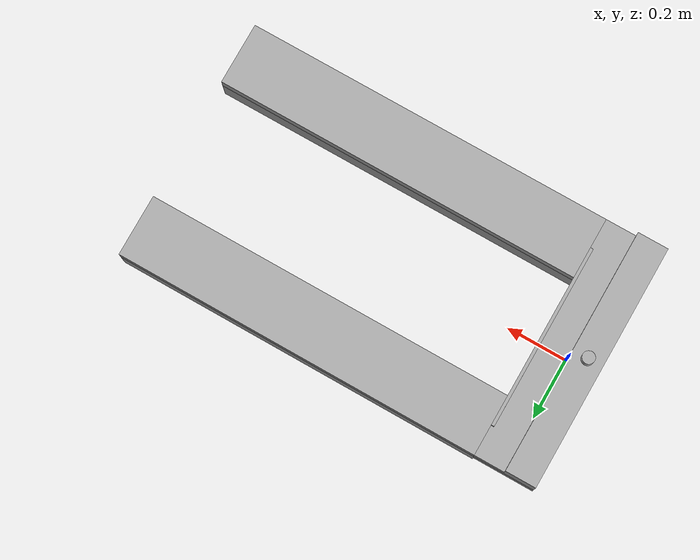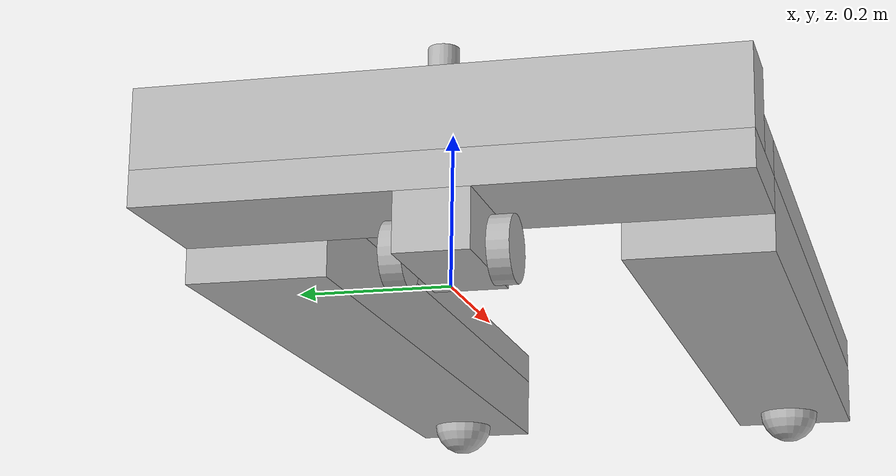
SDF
<?xml version='1.0'?>
<sdf version='1.4'>
	<model name="palletjack">
		<link name="chassis">
			<pose>0.6 0 0.11 0 0 0</pose>
			<inertial>
				<mass>100</mass>
			</inertial>
			<!--DIFFERENTIAL DRIVE CHASSIS-->
			<collision name="diffdrive_collision">
				<pose>-0.6 0 -0.05 0 0 0</pose>
				<geometry>
					<box>
						<size>0.2 0.1 0.08</size>
					</box>
				</geometry>
			</collision>
			<visual name="diffdrive_visual">
				<pose>-0.6 0 -0.05 0 0 0</pose>
				<geometry>
					<box>
						<size>0.2 0.1 0.08</size>
					</box>
				</geometry>
			</visual>

			<!--FRONT STRUCTURE-->
			<collision name="collision">
				<pose>-0.6 0 0.015 0 0 0</pose>
				<geometry>
					<box>
						<size>0.2 0.8 0.05</size>
					</box>
				</geometry>
			</collision>
			<visual name="visual">
				<pose>-0.6 0 0.015 0 0 0</pose>
				<geometry>
					<box>
						<size>0.2 0.8 0.05</size>
					</box>
				</geometry>
			</visual>

			<collision name="frontal_cover_collision">
				<pose>-0.65 0 0.095 0 0 0</pose>
				<geometry>
					<box>
						<size>0.1 0.8 0.11</size>
					</box>
				</geometry>
			</collision>
			<visual name="frontal_cover_visual">
				<pose>-0.65 0 0.095 0 0 0</pose>
				<geometry>
					<box>
						<size>0.1 0.8 0.11</size>
					</box>
				</geometry>
			</visual>

			<!--LASER STRUCTURE and SENSOR-->
			<collision name="laser_cylinder_collision">
				<pose>-0.65 0 0.17 0 0 0</pose>
				<geometry>
					<cylinder>
						<radius>0.02</radius>
						<length>0.04</length>
					</cylinder>
				</geometry>
			</collision>
			<visual name="laser_cylinder_visual">
				<pose>-0.65 0 0.17 0 0 0</pose>
				<geometry>
					<cylinder>
						<radius>0.02</radius>
						<length>0.04</length>
					</cylinder>
				</geometry>
			</visual>
			<sensor name="laser" type="ray">
				<pose>-0.63 0 0.17 0 -0 0</pose>
				<ray>
					<scan>
						<horizontal>
							<samples>120</samples>
							<resolution>1</resolution>
							<min_angle>-0.5</min_angle>
							<max_angle>0.5</max_angle>
						</horizontal>
					</scan>
					<range>
						<min>0.08</min>
						<max>1.1</max>
						<resolution>0.01</resolution>
					</range>
				</ray>
				<always_on>1</always_on>
				<update_rate>30</update_rate>
				<visualize>true</visualize>
			</sensor>

			<!--CAMERA-->
			<sensor type="camera" name="camera1">
				<pose>-0.6 0 0.04 0 0 3.14159</pose>
				<camera>
					<horizontal_fov>1.047</horizontal_fov>
					<image>
						<width>320</width>
						<height>240</height>
					</image>
					<clip>
						<near>0.1</near>
						<far>100</far>
					</clip>
				</camera>
				<always_on>1</always_on>
				<update_rate>30</update_rate>
				<visualize>true</visualize>
			</sensor>

			<!--FORKS-->
			<collision name="right_fork_collision">
				<pose>0.1 -0.3 -0.01 0 0 0</pose>
				<geometry>
					<box>
						<size>1.2 0.2 0.1</size>
					</box>
				</geometry>
			</collision>
			<visual name="right_fork_visual">
				<pose>0.1 -0.3 -0.01 0 0 0</pose>
				<geometry>
					<box>
						<size>1.2 0.2 0.1</size>
					</box>
				</geometry>
			</visual>

			<collision name="right_caster_collision">
				<pose>0.6 -0.3 -0.06 0 0 0</pose>
				<geometry>
					<sphere>
						<radius>.05</radius>
					</sphere>
				</geometry>
				<surface>
					<friction>
						<ode>
							<mu>1000</mu>
							<mu2>1000</mu2>
							<slip1>0</slip1>
							<slip2>0</slip2>
						</ode>
					</friction>
				</surface>
			</collision>
			<visual name="right_caster_visual">
				<pose>0.6 -0.3 -0.06 0 0 0</pose>
				<geometry>
					<sphere>
						<radius>.05</radius>
					</sphere>
				</geometry>
			</visual>

			<collision name="left_fork_collision">
				<pose>0.1 0.3 -0.01 0 0 0</pose>
				<geometry>
					<box>
						<size>1.2 0.2 0.1</size>
					</box>
				</geometry>
			</collision>
			<visual name="left_fork_visual">
				<pose>0.1 0.3 -0.01 0 0 0</pose>
				<geometry>
					<box>
						<size>1.2 0.2 0.1</size>
					</box>
				</geometry>
			</visual>

			<collision name="left_caster_collision">
				<pose>0.6 0.3 -0.06 0 0 0</pose>
				<geometry>
					<sphere>
						<radius>.05</radius>
					</sphere>
				</geometry>
				<surface>
					<friction>
						<ode>
							<mu>1000</mu>
							<mu2>1000</mu2>
							<slip1>0</slip1>
							<slip2>0</slip2>
						</ode>
					</friction>
				</surface>
			</collision>
			<visual name="left_caster_visual">
				<pose>0.6 0.3 -0.06 0 0 0</pose>
				<geometry>
					<sphere>
						<radius>.05</radius>
					</sphere>
				</geometry>
			</visual>
		</link>

		<!--DIFFERENTIAL DRIVE WHEELS-->
		<link name="diffdrive_right_wheel">
			<pose>0 -0.07 0.045 0 1.5707 1.5707</pose>
			<inertial>
				<mass>5</mass>
			</inertial>
			<collision name="collision">
				<geometry>
					<cylinder>
						<radius>.045</radius>
						<length>.03</length>
					</cylinder>
				</geometry>
			</collision>
			<visual name="visual">
				<geometry>
					<cylinder>
						<radius>.045</radius>
						<length>.03</length>
					</cylinder>
				</geometry>
			</visual>
		</link>

		<link name="diffdrive_left_wheel">
			<pose>0 0.07 0.045 0 1.5707 1.5707</pose>
			<inertial>
				<mass>5</mass>
			</inertial>
			<collision name="collision">
				<geometry>
					<cylinder>
						<radius>.045</radius>
						<length>.03</length>
					</cylinder>
				</geometry>
			</collision>
			<visual name="visual">
				<geometry>
					<cylinder>
						<radius>.045</radius>
						<length>.03</length>
					</cylinder>
				</geometry>
			</visual>
		</link>

		<joint type="revolute" name="left_wheel_hinge">
			<pose>0 0 -0.02 0 0 0</pose>
			<child>diffdrive_left_wheel</child>
			<parent>chassis</parent>
			<axis>
				<xyz>0 1 0</xyz>
				<dynamics>
					<damping>100</damping>
				</dynamics>
			</axis>
		</joint>

		<joint type="revolute" name="right_wheel_hinge">
			<pose>0 0 0.02 0 0 0</pose>
			<child>diffdrive_right_wheel</child>
			<parent>chassis</parent>
			<axis>
				<xyz>0 1 0</xyz>
				<dynamics>
					<damping>100</damping>
				</dynamics>
			</axis>
		</joint>

		<!--ELEVATING FORKS-->
		<link name="elevating_fork">
			<pose>0.7 0 0.175 0 0 0</pose>
			<inertial>
				<mass>50</mass>
			</inertial>
			<collision name="collision">
				<pose>-0.65 0 0 0 0 0</pose>
				<geometry>
					<box>
						<size>0.1 0.8 0.05</size>
					</box>
				</geometry>
				<surface>
					<friction>
						<ode>
							<mu>1000</mu>
							<mu2>1000</mu2>
							<slip1>0</slip1>
							<slip2>0</slip2>
						</ode>
					</friction>
				</surface>
			</collision>
			<visual name="visual">
				<pose>-0.65 0 0 0 0 0</pose>
				<geometry>
					<box>
						<size>0.1 0.8 0.05</size>
					</box>
				</geometry>
			</visual>

			<collision name="stopper_collision">
				<pose>-0.605 0 0.0325 0 0 0</pose>
				<geometry>
					<box>
						<size>0.01 0.6 0.015</size>
					</box>
				</geometry>
				<surface>
					<friction>
						<ode>
							<mu>1000</mu>
							<mu2>1000</mu2>
							<slip1>0</slip1>
							<slip2>0</slip2>
						</ode>
					</friction>
				</surface>
			</collision>
			<visual name="stopper_visual">
				<pose>-0.605 0 0.0325 0 0 0</pose>
				<geometry>
					<box>
						<size>0.01 0.6 0.015</size>
					</box>
				</geometry>
			</visual>

			<collision name="elevating_right_fork_collision">
				<pose>0 -0.3 0 0 0 0</pose>
				<geometry>
					<box>
						<size>1.2 0.2 0.05</size>
					</box>
				</geometry>
				<surface>
					<friction>
						<ode>
							<mu>1000</mu>
							<mu2>1000</mu2>
							<slip1>0</slip1>
							<slip2>0</slip2>
						</ode>
					</friction>
				</surface>
			</collision>
			<visual name="elevating_right_fork_visual">
				<pose>0 -0.3 0 0 0 0</pose>
				<geometry>
					<box>
						<size>1.2 0.2 0.05</size>
					</box>
				</geometry>
			</visual>

			<collision name="elevating_left_fork_collision">
				<pose>0 0.3 0 0 0 0</pose>
				<geometry>
					<box>
						<size>1.2 0.2 0.05</size>
					</box>
				</geometry>
				<surface>
					<friction>
						<ode>
							<mu>1000</mu>
							<mu2>1000</mu2>
							<slip1>0</slip1>
							<slip2>0</slip2>
						</ode>
					</friction>
				</surface>
			</collision>
			<visual name="elevating_left_fork_visual">
				<pose>0 0.3 0 0 0 0</pose>
				<geometry>
					<box>
						<size>1.2 0.2 0.05</size>
					</box>
				</geometry>
			</visual>
		</link>

		<joint type="prismatic" name="right_prism">
			<pose>-0.6 -0.3 -0.025 0 0 0</pose>
			<child>elevating_fork</child>
			<parent>chassis</parent>
			<axis>
				<xyz>0 0 1</xyz>
				<limit>
					<lower>0</lower>
					<upper>0.06</upper>
				</limit>
			</axis>
		</joint>

		<joint type="prismatic" name="left_prism">
			<pose>-0.6 0.3 -0.025 0 0 0</pose>
			<child>elevating_fork</child>
			<parent>chassis</parent>
			<axis>
				<xyz>0 0 1</xyz>
				<limit>
					<lower>0</lower>
					<upper>0.06</upper>
				</limit>
			</axis>
		</joint>

		<joint type="prismatic" name="right_back_prism">
			<pose>0.5 -0.3 -0.025 0 -0 0</pose>
			<child>elevating_fork</child>
			<parent>chassis</parent>
			<axis>
				<xyz>0 0 1</xyz>
				<limit>
					<lower>0</lower>
					<upper>0.06</upper>
				</limit>
			</axis>
		</joint>

		<joint type="prismatic" name="left_back_prism">
			<pose>0.5 0.3 -0.025 0 0 0</pose>
			<child>elevating_fork</child>
			<parent>chassis</parent>
			<axis>
				<xyz>0 0 1</xyz>
				<limit>
					<lower>0</lower>
					<upper>0.06</upper>
				</limit>
			</axis>
		</joint>

		<plugin name="ControlPlugin" filename="libControlPlugin.so"/>

	</model>
</sdf>
